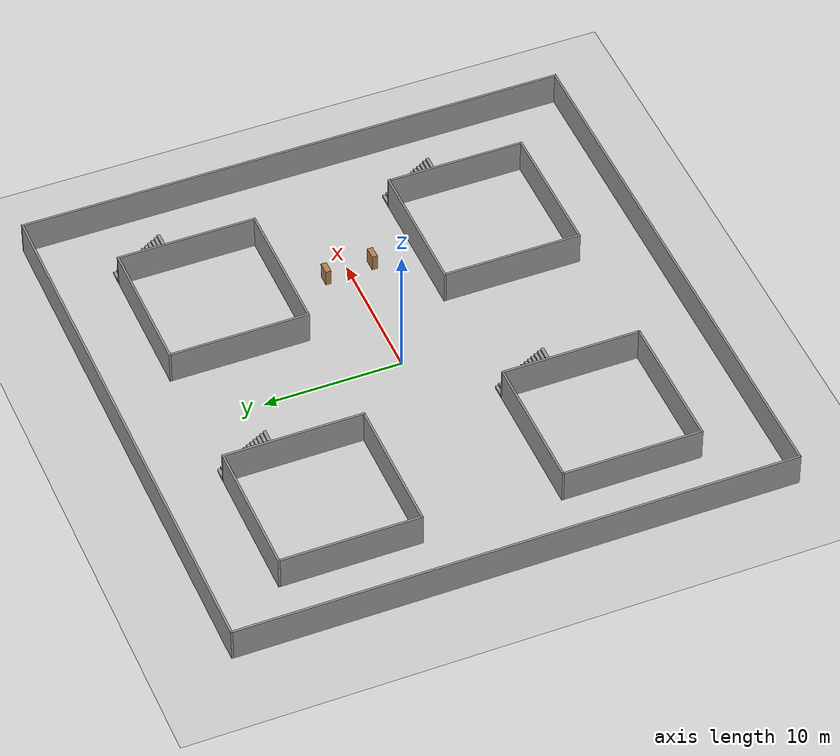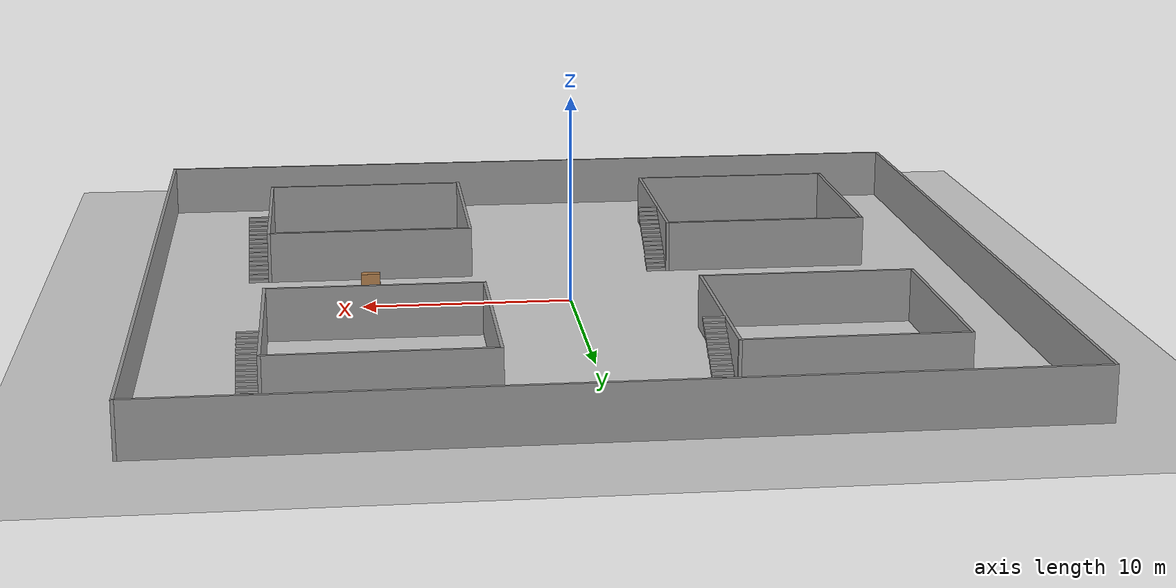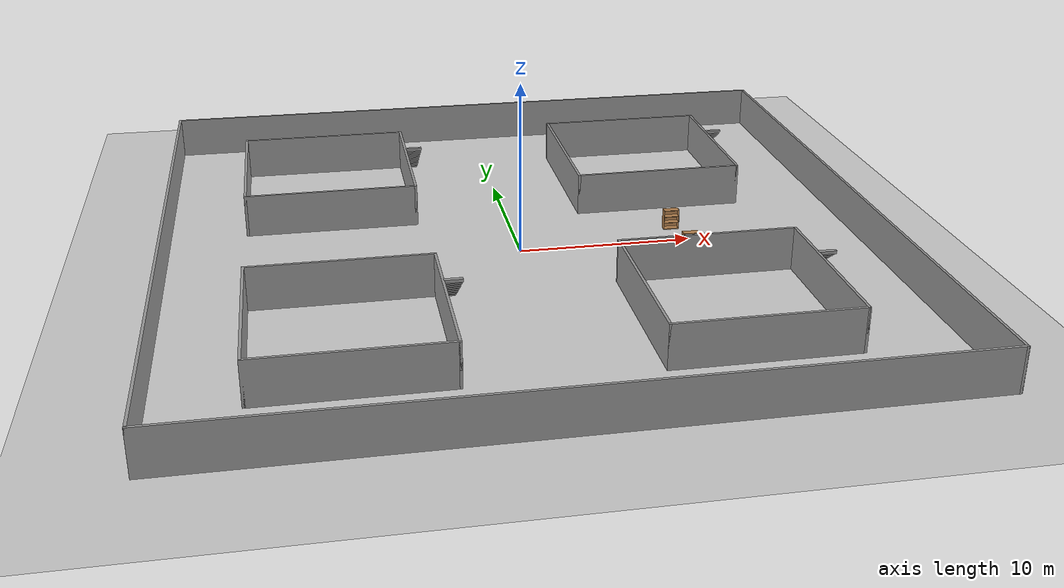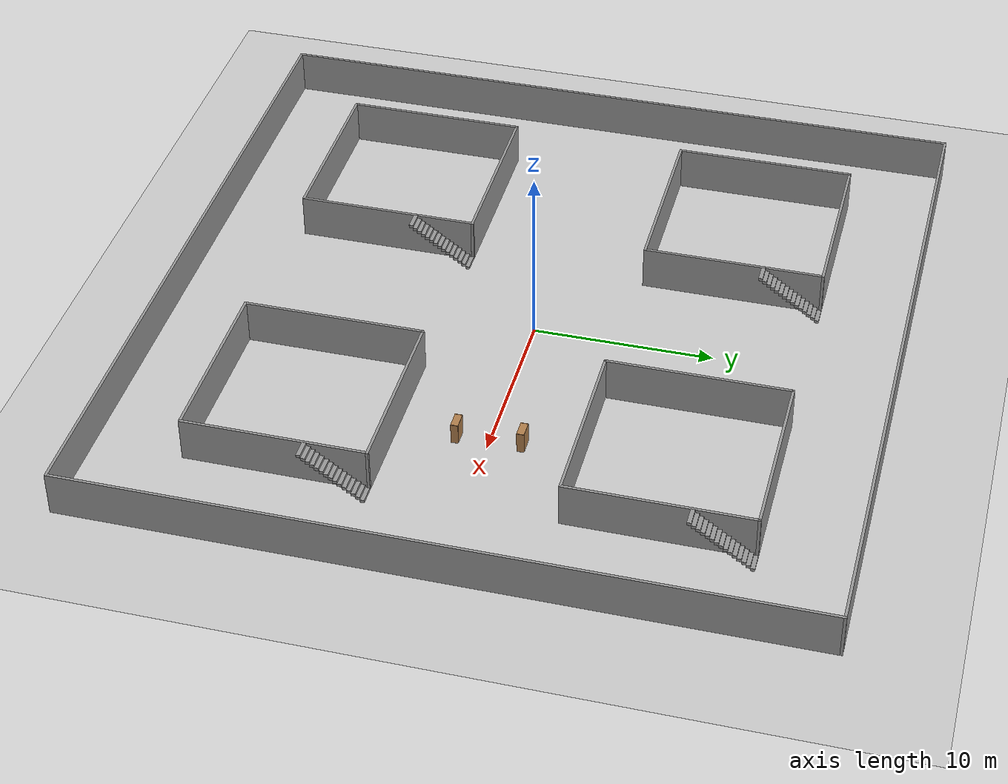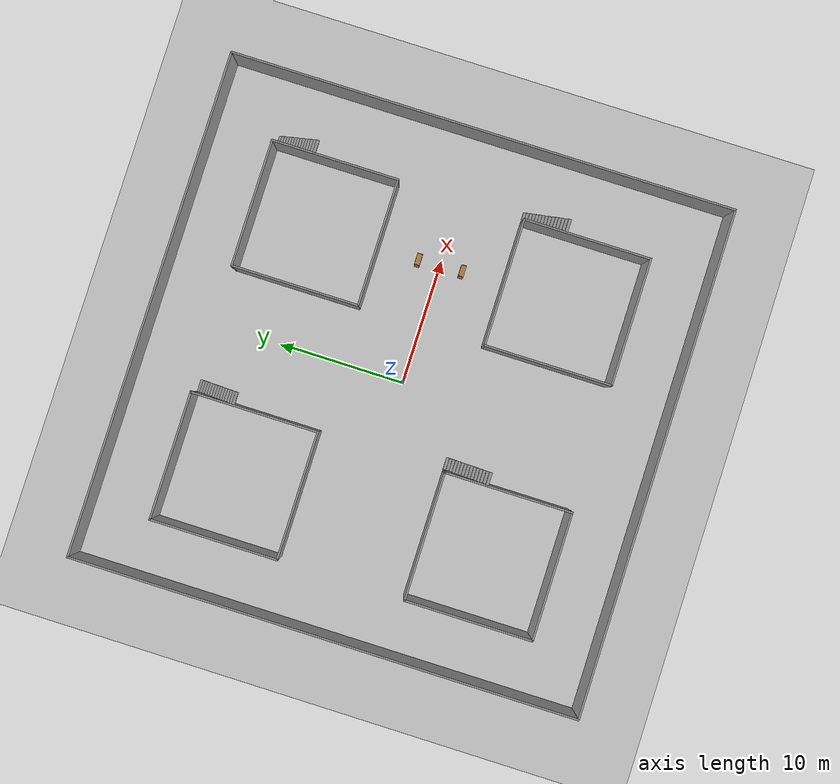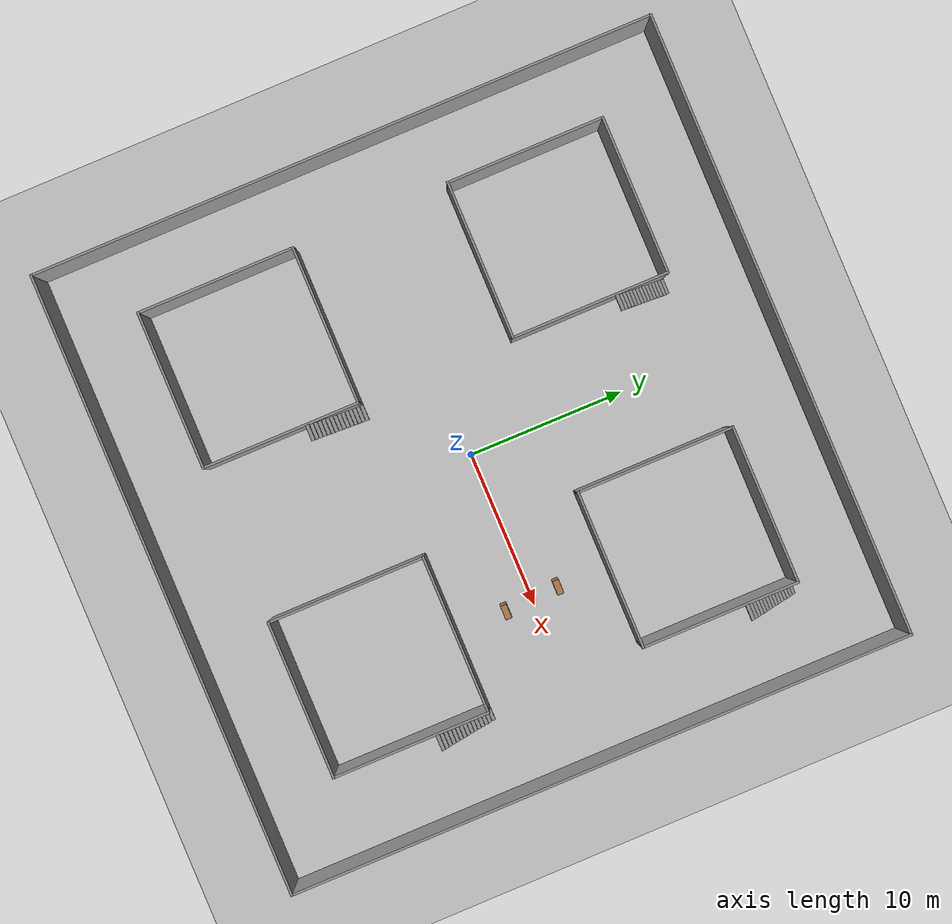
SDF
<sdf version="1.6">
 <world name="default">
  <light name="sun" type="directional">
   <pose>0 0 10 0 -0 0</pose>
   <diffuse>0.8 0.8 0.8 1</diffuse>
   <specular>0.1 0.1 0.1 1</specular>
   <attenuation>
    <range>1000</range>
    <constant>0.9</constant>
    <linear>0.01</linear>
    <quadratic>0.001</quadratic>
   </attenuation>
   <direction>-0.5 0.5 -1</direction>
  </light>
  <model name="ground_plane">
   <static>1</static>
   <link name="link">
    <collision name="collision">
     <geometry><plane><normal>0 0 1</normal><size>100 100</size></plane></geometry>
     <surface><friction><ode><mu>100</mu><mu2>50</mu2></ode></friction></surface>
    </collision>
    <visual name="visual">
     <cast_shadows>0</cast_shadows>
     <geometry><plane><normal>0 0 1</normal><size>100 100</size></plane></geometry>
     <material>
      <script><uri>file://media/materials/scripts/gazebo.material</uri><name>Gazebo/Grey</name></script>
     </material>
    </visual>
   </link>
  </model>
  <gravity>0 0 -9.8</gravity>
  <magnetic_field>6e-06 2.3e-05 -4.2e-05</magnetic_field>
  <atmosphere type="adiabatic"/>
  <physics name="default_physics" default="0" type="ode">
   <max_step_size>0.001</max_step_size>
   <real_time_factor>1</real_time_factor>
   <real_time_update_rate>1000</real_time_update_rate>
  </physics>
  <scene><ambient>0.4 0.4 0.4 1</ambient><background>0.7 0.7 0.7 1</background><shadows>1</shadows></scene>
  <spherical_coordinates>
   <surface_model>EARTH_WGS84</surface_model>
   <latitude_deg>0</latitude_deg>
   <longitude_deg>0</longitude_deg>
   <elevation>0</elevation>
   <heading_deg>0</heading_deg>
  </spherical_coordinates>
  <model name="10X10">
   <pose>-10 -10 0 0 -0 0</pose>
   <link name="Stairs_0">
    <visual name="Stairs_0_Visual_0">
     <pose>5.05837 4.95794 0.083333 0 -0 0</pose>
     <geometry><box><size>1 0.233333 0.166667</size></box></geometry>
     <material>
      <script><uri>file://media/materials/scripts/gazebo.material</uri><name>Gazebo/Grey</name></script>
      <ambient>1 1 1 1</ambient>
     </material>
    </visual>
    <collision name="Stairs_0_Collision_0">
     <geometry><box><size>1 0.233333 0.166667</size></box></geometry>
     <pose>5.05837 4.95794 0.083333 0 -0 0</pose>
    </collision>
    <visual name="Stairs_0_Visual_1">
     <pose>5.05837 4.72461 0.25 0 -0 0</pose>
     <geometry><box><size>1 0.233333 0.166667</size></box></geometry>
     <material>
      <script><uri>file://media/materials/scripts/gazebo.material</uri><name>Gazebo/Grey</name></script>
      <ambient>1 1 1 1</ambient>
     </material>
    </visual>
    <collision name="Stairs_0_Collision_1">
     <geometry><box><size>1 0.233333 0.166667</size></box></geometry>
     <pose>5.05837 4.72461 0.25 0 -0 0</pose>
    </collision>
    <visual name="Stairs_0_Visual_2">
     <pose>5.05837 4.49128 0.416667 0 -0 0</pose>
     <geometry><box><size>1 0.233333 0.166667</size></box></geometry>
     <material>
      <script><uri>file://media/materials/scripts/gazebo.material</uri><name>Gazebo/Grey</name></script>
      <ambient>1 1 1 1</ambient>
     </material>
    </visual>
    <collision name="Stairs_0_Collision_2">
     <geometry><box><size>1 0.233333 0.166667</size></box></geometry>
     <pose>5.05837 4.49128 0.416667 0 -0 0</pose>
    </collision>
    <visual name="Stairs_0_Visual_3">
     <pose>5.05837 4.25794 0.583333 0 -0 0</pose>
     <geometry><box><size>1 0.233333 0.166667</size></box></geometry>
     <material>
      <script><uri>file://media/materials/scripts/gazebo.material</uri><name>Gazebo/Grey</name></script>
      <ambient>1 1 1 1</ambient>
     </material>
    </visual>
    <collision name="Stairs_0_Collision_3">
     <geometry><box><size>1 0.233333 0.166667</size></box></geometry>
     <pose>5.05837 4.25794 0.583333 0 -0 0</pose>
    </collision>
    <visual name="Stairs_0_Visual_4">
     <pose>5.05837 4.02461 0.75 0 -0 0</pose>
     <geometry><box><size>1 0.233333 0.166667</size></box></geometry>
     <material>
      <script><uri>file://media/materials/scripts/gazebo.material</uri><name>Gazebo/Grey</name></script>
      <ambient>1 1 1 1</ambient>
     </material>
    </visual>
    <collision name="Stairs_0_Collision_4">
     <geometry><box><size>1 0.233333 0.166667</size></box></geometry>
     <pose>5.05837 4.02461 0.75 0 -0 0</pose>
    </collision>
    <visual name="Stairs_0_Visual_5">
     <pose>5.05837 3.79128 0.916667 0 -0 0</pose>
     <geometry><box><size>1 0.233333 0.166667</size></box></geometry>
     <material>
      <script><uri>file://media/materials/scripts/gazebo.material</uri><name>Gazebo/Grey</name></script>
      <ambient>1 1 1 1</ambient>
     </material>
    </visual>
    <collision name="Stairs_0_Collision_5">
     <geometry><box><size>1 0.233333 0.166667</size></box></geometry>
     <pose>5.05837 3.79128 0.916667 0 -0 0</pose>
    </collision>
    <visual name="Stairs_0_Visual_6">
     <pose>5.05837 3.55794 1.08333 0 -0 0</pose>
     <geometry><box><size>1 0.233333 0.166667</size></box></geometry>
     <material>
      <script><uri>file://media/materials/scripts/gazebo.material</uri><name>Gazebo/Grey</name></script>
      <ambient>1 1 1 1</ambient>
     </material>
    </visual>
    <collision name="Stairs_0_Collision_6">
     <geometry><box><size>1 0.233333 0.166667</size></box></geometry>
     <pose>5.05837 3.55794 1.08333 0 -0 0</pose>
    </collision>
    <visual name="Stairs_0_Visual_7">
     <pose>5.05837 3.32461 1.25 0 -0 0</pose>
     <geometry><box><size>1 0.233333 0.166667</size></box></geometry>
     <material>
      <script><uri>file://media/materials/scripts/gazebo.material</uri><name>Gazebo/Grey</name></script>
      <ambient>1 1 1 1</ambient>
     </material>
    </visual>
    <collision name="Stairs_0_Collision_7">
     <geometry><box><size>1 0.233333 0.166667</size></box></geometry>
     <pose>5.05837 3.32461 1.25 0 -0 0</pose>
    </collision>
    <visual name="Stairs_0_Visual_8">
     <pose>5.05837 3.09128 1.41667 0 -0 0</pose>
     <geometry><box><size>1 0.233333 0.166667</size></box></geometry>
     <material>
      <script><uri>file://media/materials/scripts/gazebo.material</uri><name>Gazebo/Grey</name></script>
      <ambient>1 1 1 1</ambient>
     </material>
    </visual>
    <collision name="Stairs_0_Collision_8">
     <geometry><box><size>1 0.233333 0.166667</size></box></geometry>
     <pose>5.05837 3.09128 1.41667 0 -0 0</pose>
    </collision>
    <visual name="Stairs_0_Visual_9">
     <pose>5.05837 2.85794 1.58333 0 -0 0</pose>
     <geometry><box><size>1 0.233333 0.166667</size></box></geometry>
     <material>
      <script><uri>file://media/materials/scripts/gazebo.material</uri><name>Gazebo/Grey</name></script>
      <ambient>1 1 1 1</ambient>
     </material>
    </visual>
    <collision name="Stairs_0_Collision_9">
     <geometry><box><size>1 0.233333 0.166667</size></box></geometry>
     <pose>5.05837 2.85794 1.58333 0 -0 0</pose>
    </collision>
    <visual name="Stairs_0_Visual_10">
     <pose>5.05837 2.62461 1.75 0 -0 0</pose>
     <geometry><box><size>1 0.233333 0.166667</size></box></geometry>
     <material>
      <script><uri>file://media/materials/scripts/gazebo.material</uri><name>Gazebo/Grey</name></script>
      <ambient>1 1 1 1</ambient>
     </material>
    </visual>
    <collision name="Stairs_0_Collision_10">
     <geometry><box><size>1 0.233333 0.166667</size></box></geometry>
     <pose>5.05837 2.62461 1.75 0 -0 0</pose>
    </collision>
    <visual name="Stairs_0_Visual_11">
     <pose>5.05837 2.39128 1.91667 0 -0 0</pose>
     <geometry><box><size>1 0.233333 0.166667</size></box></geometry>
     <material>
      <script><uri>file://media/materials/scripts/gazebo.material</uri><name>Gazebo/Grey</name></script>
      <ambient>1 1 1 1</ambient>
     </material>
    </visual>
    <collision name="Stairs_0_Collision_11">
     <geometry><box><size>1 0.233333 0.166667</size></box></geometry>
     <pose>5.05837 2.39128 1.91667 0 -0 0</pose>
    </collision>
    <visual name="Stairs_0_Visual_12">
     <pose>5.05837 2.15794 2.08333 0 -0 0</pose>
     <geometry><box><size>1 0.233333 0.166667</size></box></geometry>
     <material>
      <script><uri>file://media/materials/scripts/gazebo.material</uri><name>Gazebo/Grey</name></script>
      <ambient>1 1 1 1</ambient>
     </material>
    </visual>
    <collision name="Stairs_0_Collision_12">
     <geometry><box><size>1 0.233333 0.166667</size></box></geometry>
     <pose>5.05837 2.15794 2.08333 0 -0 0</pose>
    </collision>
    <visual name="Stairs_0_Visual_13">
     <pose>5.05837 1.92461 2.25 0 -0 0</pose>
     <geometry><box><size>1 0.233333 0.166667</size></box></geometry>
     <material>
      <script><uri>file://media/materials/scripts/gazebo.material</uri><name>Gazebo/Grey</name></script>
      <ambient>1 1 1 1</ambient>
     </material>
    </visual>
    <collision name="Stairs_0_Collision_13">
     <geometry><box><size>1 0.233333 0.166667</size></box></geometry>
     <pose>5.05837 1.92461 2.25 0 -0 0</pose>
    </collision>
    <visual name="Stairs_0_Visual_14">
     <pose>5.05837 1.69128 2.41667 0 -0 0</pose>
     <geometry><box><size>1 0.233333 0.166667</size></box></geometry>
     <material>
      <script><uri>file://media/materials/scripts/gazebo.material</uri><name>Gazebo/Grey</name></script>
      <ambient>1 1 1 1</ambient>
     </material>
    </visual>
    <collision name="Stairs_0_Collision_14">
     <geometry><box><size>1 0.233333 0.166667</size></box></geometry>
     <pose>5.05837 1.69128 2.41667 0 -0 0</pose>
    </collision>
   </link>
   <link name="Wall_1">
    <collision name="Wall_1_Collision">
     <geometry><box><size>10.15 0.15 2.5</size></box></geometry>
     <pose>0 0 1.25 0 -0 0</pose>
    </collision>
    <visual name="Wall_1_Visual">
     <pose>0 0 1.25 0 -0 0</pose>
     <geometry><box><size>10.15 0.15 2.5</size></box></geometry>
     <material>
      <script><uri>file://media/materials/scripts/gazebo.material</uri><name>Gazebo/Grey</name></script>
      <ambient>1 1 1 1</ambient>
     </material>
    </visual>
    <pose>-0.483372 -5 0 0 -0 0</pose>
   </link>
   <link name="Wall_4">
    <collision name="Wall_4_Collision">
     <geometry><box><size>10.15 0.15 2.5</size></box></geometry>
     <pose>0 0 1.25 0 -0 0</pose>
    </collision>
    <visual name="Wall_4_Visual">
     <pose>0 0 1.25 0 -0 0</pose>
     <geometry><box><size>10.15 0.15 2.5</size></box></geometry>
     <material>
      <script><uri>file://media/materials/scripts/gazebo.material</uri><name>Gazebo/Grey</name></script>
      <ambient>1 1 1 1</ambient>
     </material>
    </visual>
    <pose>4.51663 0 0 0 -0 1.5708</pose>
   </link>
   <link name="Wall_6">
    <collision name="Wall_6_Collision">
     <geometry><box><size>10.15 0.15 2.5</size></box></geometry>
     <pose>0 0 1.25 0 -0 0</pose>
    </collision>
    <visual name="Wall_6_Visual">
     <pose>0 0 1.25 0 -0 0</pose>
     <geometry><box><size>10.15 0.15 2.5</size></box></geometry>
     <material>
      <script><uri>file://media/materials/scripts/gazebo.material</uri><name>Gazebo/Grey</name></script>
      <ambient>1 1 1 1</ambient>
     </material>
    </visual>
    <pose>-0.483372 5 0 0 -0 3.14159</pose>
   </link>
   <link name="Wall_7">
    <collision name="Wall_7_Collision">
     <geometry><box><size>10.15 0.15 2.5</size></box></geometry>
     <pose>0 0 1.25 0 -0 0</pose>
    </collision>
    <visual name="Wall_7_Visual">
     <pose>0 0 1.25 0 -0 0</pose>
     <geometry><box><size>10.15 0.15 2.5</size></box></geometry>
     <material>
      <script><uri>file://media/materials/scripts/gazebo.material</uri><name>Gazebo/Grey</name></script>
      <ambient>1 1 1 1</ambient>
     </material>
    </visual>
    <pose>-5.48337 0 0 0 0 -1.5708</pose>
   </link>
   <static>1</static>
  </model>
  <model name="40X40_nofloor">
   <link name="Wall_31">
    <pose>0 -20 0 0 -0 0</pose>
    <visual name="Wall_31_Visual">
     <pose>0 0 1.25 0 -0 0</pose>
     <geometry><box><size>40.15 0.15 2.5</size></box></geometry>
     <material>
      <script><uri>file://media/materials/scripts/gazebo.material</uri><name>Gazebo/Grey</name></script>
      <ambient>1 1 1 1</ambient>
      <diffuse>0.7 0.7 0.7 1</diffuse>
      <specular>0.01 0.01 0.01 1</specular>
      <emissive>0 0 0 1</emissive>
     </material>
    </visual>
    <collision name="Wall_31_Collision">
     <pose>0 0 1.25 0 -0 0</pose>
     <geometry><box><size>40.15 0.15 2.5</size></box></geometry>
     <surface>
      <friction>
       <ode><mu>1</mu><mu2>1</mu2><fdir1>0 0 0</fdir1><slip1>0</slip1><slip2>0</slip2></ode>
       <torsional>
        <coefficient>1</coefficient>
        <patch_radius>0</patch_radius>
        <surface_radius>0</surface_radius>
        <use_patch_radius>1</use_patch_radius>
        <ode><slip>0</slip></ode>
       </torsional>
      </friction>
      <bounce><restitution_coefficient>0</restitution_coefficient><threshold>1e+06</threshold></bounce>
      <contact>
       <collide_without_contact>0</collide_without_contact>
       <collide_without_contact_bitmask>1</collide_without_contact_bitmask>
       <collide_bitmask>1</collide_bitmask>
       <ode>
        <soft_cfm>0</soft_cfm>
        <soft_erp>0.2</soft_erp>
        <kp>1e+13</kp>
        <kd>1</kd>
        <max_vel>0.01</max_vel>
        <min_depth>0</min_depth>
       </ode>
       <bullet>
        <split_impulse>1</split_impulse>
        <split_impulse_penetration_threshold>-0.01</split_impulse_penetration_threshold>
        <soft_cfm>0</soft_cfm>
        <soft_erp>0.2</soft_erp>
        <kp>1e+13</kp>
        <kd>1</kd>
       </bullet>
      </contact>
     </surface>
    </collision>
   </link>
   <link name="Wall_33">
    <pose>20 0 0 0 -0 1.5708</pose>
    <visual name="Wall_33_Visual">
     <pose>0 0 1.25 0 -0 0</pose>
     <geometry><box><size>40.15 0.15 2.5</size></box></geometry>
     <material>
      <script><uri>file://media/materials/scripts/gazebo.material</uri><name>Gazebo/Grey</name></script>
      <ambient>1 1 1 1</ambient>
      <diffuse>0.7 0.7 0.7 1</diffuse>
      <specular>0.01 0.01 0.01 1</specular>
      <emissive>0 0 0 1</emissive>
     </material>
    </visual>
    <collision name="Wall_33_Collision">
     <pose>0 0 1.25 0 -0 0</pose>
     <geometry><box><size>40.15 0.15 2.5</size></box></geometry>
     <surface>
      <friction>
       <ode><mu>1</mu><mu2>1</mu2><fdir1>0 0 0</fdir1><slip1>0</slip1><slip2>0</slip2></ode>
       <torsional>
        <coefficient>1</coefficient>
        <patch_radius>0</patch_radius>
        <surface_radius>0</surface_radius>
        <use_patch_radius>1</use_patch_radius>
        <ode><slip>0</slip></ode>
       </torsional>
      </friction>
      <bounce><restitution_coefficient>0</restitution_coefficient><threshold>1e+06</threshold></bounce>
      <contact>
       <collide_without_contact>0</collide_without_contact>
       <collide_without_contact_bitmask>1</collide_without_contact_bitmask>
       <collide_bitmask>1</collide_bitmask>
       <ode>
        <soft_cfm>0</soft_cfm>
        <soft_erp>0.2</soft_erp>
        <kp>1e+13</kp>
        <kd>1</kd>
        <max_vel>0.01</max_vel>
        <min_depth>0</min_depth>
       </ode>
       <bullet>
        <split_impulse>1</split_impulse>
        <split_impulse_penetration_threshold>-0.01</split_impulse_penetration_threshold>
        <soft_cfm>0</soft_cfm>
        <soft_erp>0.2</soft_erp>
        <kp>1e+13</kp>
        <kd>1</kd>
       </bullet>
      </contact>
     </surface>
    </collision>
   </link>
   <link name="Wall_37">
    <pose>0 20 0 0 -0 3.14159</pose>
    <visual name="Wall_37_Visual">
     <pose>0 0 1.25 0 -0 0</pose>
     <geometry><box><size>40.15 0.15 2.5</size></box></geometry>
     <material>
      <script><uri>file://media/materials/scripts/gazebo.material</uri><name>Gazebo/Grey</name></script>
      <ambient>1 1 1 1</ambient>
      <diffuse>0.7 0.7 0.7 1</diffuse>
      <specular>0.01 0.01 0.01 1</specular>
      <emissive>0 0 0 1</emissive>
     </material>
    </visual>
    <collision name="Wall_37_Collision">
     <pose>0 0 1.25 0 -0 0</pose>
     <geometry><box><size>40.15 0.15 2.5</size></box></geometry>
     <surface>
      <friction>
       <ode><mu>1</mu><mu2>1</mu2><fdir1>0 0 0</fdir1><slip1>0</slip1><slip2>0</slip2></ode>
       <torsional>
        <coefficient>1</coefficient>
        <patch_radius>0</patch_radius>
        <surface_radius>0</surface_radius>
        <use_patch_radius>1</use_patch_radius>
        <ode><slip>0</slip></ode>
       </torsional>
      </friction>
      <bounce><restitution_coefficient>0</restitution_coefficient><threshold>1e+06</threshold></bounce>
      <contact>
       <collide_without_contact>0</collide_without_contact>
       <collide_without_contact_bitmask>1</collide_without_contact_bitmask>
       <collide_bitmask>1</collide_bitmask>
       <ode>
        <soft_cfm>0</soft_cfm>
        <soft_erp>0.2</soft_erp>
        <kp>1e+13</kp>
        <kd>1</kd>
        <max_vel>0.01</max_vel>
        <min_depth>0</min_depth>
       </ode>
       <bullet>
        <split_impulse>1</split_impulse>
        <split_impulse_penetration_threshold>-0.01</split_impulse_penetration_threshold>
        <soft_cfm>0</soft_cfm>
        <soft_erp>0.2</soft_erp>
        <kp>1e+13</kp>
        <kd>1</kd>
       </bullet>
      </contact>
     </surface>
    </collision>
   </link>
   <link name="Wall_40">
    <pose>-20 0 0 0 0 -1.5708</pose>
    <visual name="Wall_40_Visual">
     <pose>0 0 1.25 0 -0 0</pose>
     <geometry><box><size>40.15 0.15 2.5</size></box></geometry>
     <material>
      <script><uri>file://media/materials/scripts/gazebo.material</uri><name>Gazebo/Grey</name></script>
      <ambient>1 1 1 1</ambient>
      <diffuse>0.7 0.7 0.7 1</diffuse>
      <specular>0.01 0.01 0.01 1</specular>
      <emissive>0 0 0 1</emissive>
     </material>
    </visual>
    <collision name="Wall_40_Collision">
     <pose>0 0 1.25 0 -0 0</pose>
     <geometry><box><size>40.15 0.15 2.5</size></box></geometry>
     <surface>
      <friction>
       <ode><mu>1</mu><mu2>1</mu2><fdir1>0 0 0</fdir1><slip1>0</slip1><slip2>0</slip2></ode>
       <torsional>
        <coefficient>1</coefficient>
        <patch_radius>0</patch_radius>
        <surface_radius>0</surface_radius>
        <use_patch_radius>1</use_patch_radius>
        <ode><slip>0</slip></ode>
       </torsional>
      </friction>
      <bounce><restitution_coefficient>0</restitution_coefficient><threshold>1e+06</threshold></bounce>
      <contact>
       <collide_without_contact>0</collide_without_contact>
       <collide_without_contact_bitmask>1</collide_without_contact_bitmask>
       <collide_bitmask>1</collide_bitmask>
       <ode>
        <soft_cfm>0</soft_cfm>
        <soft_erp>0.2</soft_erp>
        <kp>1e+13</kp>
        <kd>1</kd>
        <max_vel>0.01</max_vel>
        <min_depth>0</min_depth>
       </ode>
       <bullet>
        <split_impulse>1</split_impulse>
        <split_impulse_penetration_threshold>-0.01</split_impulse_penetration_threshold>
        <soft_cfm>0</soft_cfm>
        <soft_erp>0.2</soft_erp>
        <kp>1e+13</kp>
        <kd>1</kd>
       </bullet>
      </contact>
     </surface>
    </collision>
   </link>
   <static>1</static>
  </model>
  <model name="10X10_clone">
   <pose>-10 10 0 0 -0 0</pose>
   <link name="Stairs_0">
    <visual name="Stairs_0_Visual_0">
     <pose>5.05837 4.95794 0.083333 0 -0 0</pose>
     <geometry><box><size>1 0.233333 0.166667</size></box></geometry>
     <material>
      <script><uri>file://media/materials/scripts/gazebo.material</uri><name>Gazebo/Grey</name></script>
      <ambient>1 1 1 1</ambient>
     </material>
    </visual>
    <collision name="Stairs_0_Collision_0">
     <geometry><box><size>1 0.233333 0.166667</size></box></geometry>
     <pose>5.05837 4.95794 0.083333 0 -0 0</pose>
    </collision>
    <visual name="Stairs_0_Visual_1">
     <pose>5.05837 4.72461 0.25 0 -0 0</pose>
     <geometry><box><size>1 0.233333 0.166667</size></box></geometry>
     <material>
      <script><uri>file://media/materials/scripts/gazebo.material</uri><name>Gazebo/Grey</name></script>
      <ambient>1 1 1 1</ambient>
     </material>
    </visual>
    <collision name="Stairs_0_Collision_1">
     <geometry><box><size>1 0.233333 0.166667</size></box></geometry>
     <pose>5.05837 4.72461 0.25 0 -0 0</pose>
    </collision>
    <visual name="Stairs_0_Visual_2">
     <pose>5.05837 4.49128 0.416667 0 -0 0</pose>
     <geometry><box><size>1 0.233333 0.166667</size></box></geometry>
     <material>
      <script><uri>file://media/materials/scripts/gazebo.material</uri><name>Gazebo/Grey</name></script>
      <ambient>1 1 1 1</ambient>
     </material>
    </visual>
    <collision name="Stairs_0_Collision_2">
     <geometry><box><size>1 0.233333 0.166667</size></box></geometry>
     <pose>5.05837 4.49128 0.416667 0 -0 0</pose>
    </collision>
    <visual name="Stairs_0_Visual_3">
     <pose>5.05837 4.25794 0.583333 0 -0 0</pose>
     <geometry><box><size>1 0.233333 0.166667</size></box></geometry>
     <material>
      <script><uri>file://media/materials/scripts/gazebo.material</uri><name>Gazebo/Grey</name></script>
      <ambient>1 1 1 1</ambient>
     </material>
    </visual>
    <collision name="Stairs_0_Collision_3">
     <geometry><box><size>1 0.233333 0.166667</size></box></geometry>
     <pose>5.05837 4.25794 0.583333 0 -0 0</pose>
    </collision>
    <visual name="Stairs_0_Visual_4">
     <pose>5.05837 4.02461 0.75 0 -0 0</pose>
     <geometry><box><size>1 0.233333 0.166667</size></box></geometry>
     <material>
      <script><uri>file://media/materials/scripts/gazebo.material</uri><name>Gazebo/Grey</name></script>
      <ambient>1 1 1 1</ambient>
     </material>
    </visual>
    <collision name="Stairs_0_Collision_4">
     <geometry><box><size>1 0.233333 0.166667</size></box></geometry>
     <pose>5.05837 4.02461 0.75 0 -0 0</pose>
    </collision>
    <visual name="Stairs_0_Visual_5">
     <pose>5.05837 3.79128 0.916667 0 -0 0</pose>
     <geometry><box><size>1 0.233333 0.166667</size></box></geometry>
     <material>
      <script><uri>file://media/materials/scripts/gazebo.material</uri><name>Gazebo/Grey</name></script>
      <ambient>1 1 1 1</ambient>
     </material>
    </visual>
    <collision name="Stairs_0_Collision_5">
     <geometry><box><size>1 0.233333 0.166667</size></box></geometry>
     <pose>5.05837 3.79128 0.916667 0 -0 0</pose>
    </collision>
    <visual name="Stairs_0_Visual_6">
     <pose>5.05837 3.55794 1.08333 0 -0 0</pose>
     <geometry><box><size>1 0.233333 0.166667</size></box></geometry>
     <material>
      <script><uri>file://media/materials/scripts/gazebo.material</uri><name>Gazebo/Grey</name></script>
      <ambient>1 1 1 1</ambient>
     </material>
    </visual>
    <collision name="Stairs_0_Collision_6">
     <geometry><box><size>1 0.233333 0.166667</size></box></geometry>
     <pose>5.05837 3.55794 1.08333 0 -0 0</pose>
    </collision>
    <visual name="Stairs_0_Visual_7">
     <pose>5.05837 3.32461 1.25 0 -0 0</pose>
     <geometry><box><size>1 0.233333 0.166667</size></box></geometry>
     <material>
      <script><uri>file://media/materials/scripts/gazebo.material</uri><name>Gazebo/Grey</name></script>
      <ambient>1 1 1 1</ambient>
     </material>
    </visual>
    <collision name="Stairs_0_Collision_7">
     <geometry><box><size>1 0.233333 0.166667</size></box></geometry>
     <pose>5.05837 3.32461 1.25 0 -0 0</pose>
    </collision>
    <visual name="Stairs_0_Visual_8">
     <pose>5.05837 3.09128 1.41667 0 -0 0</pose>
     <geometry><box><size>1 0.233333 0.166667</size></box></geometry>
     <material>
      <script><uri>file://media/materials/scripts/gazebo.material</uri><name>Gazebo/Grey</name></script>
      <ambient>1 1 1 1</ambient>
     </material>
    </visual>
    <collision name="Stairs_0_Collision_8">
     <geometry><box><size>1 0.233333 0.166667</size></box></geometry>
     <pose>5.05837 3.09128 1.41667 0 -0 0</pose>
    </collision>
    <visual name="Stairs_0_Visual_9">
     <pose>5.05837 2.85794 1.58333 0 -0 0</pose>
     <geometry><box><size>1 0.233333 0.166667</size></box></geometry>
     <material>
      <script><uri>file://media/materials/scripts/gazebo.material</uri><name>Gazebo/Grey</name></script>
      <ambient>1 1 1 1</ambient>
     </material>
    </visual>
    <collision name="Stairs_0_Collision_9">
     <geometry><box><size>1 0.233333 0.166667</size></box></geometry>
     <pose>5.05837 2.85794 1.58333 0 -0 0</pose>
    </collision>
    <visual name="Stairs_0_Visual_10">
     <pose>5.05837 2.62461 1.75 0 -0 0</pose>
     <geometry><box><size>1 0.233333 0.166667</size></box></geometry>
     <material>
      <script><uri>file://media/materials/scripts/gazebo.material</uri><name>Gazebo/Grey</name></script>
      <ambient>1 1 1 1</ambient>
     </material>
    </visual>
    <collision name="Stairs_0_Collision_10">
     <geometry><box><size>1 0.233333 0.166667</size></box></geometry>
     <pose>5.05837 2.62461 1.75 0 -0 0</pose>
    </collision>
    <visual name="Stairs_0_Visual_11">
     <pose>5.05837 2.39128 1.91667 0 -0 0</pose>
     <geometry><box><size>1 0.233333 0.166667</size></box></geometry>
     <material>
      <script><uri>file://media/materials/scripts/gazebo.material</uri><name>Gazebo/Grey</name></script>
      <ambient>1 1 1 1</ambient>
     </material>
    </visual>
    <collision name="Stairs_0_Collision_11">
     <geometry><box><size>1 0.233333 0.166667</size></box></geometry>
     <pose>5.05837 2.39128 1.91667 0 -0 0</pose>
    </collision>
    <visual name="Stairs_0_Visual_12">
     <pose>5.05837 2.15794 2.08333 0 -0 0</pose>
     <geometry><box><size>1 0.233333 0.166667</size></box></geometry>
     <material>
      <script><uri>file://media/materials/scripts/gazebo.material</uri><name>Gazebo/Grey</name></script>
      <ambient>1 1 1 1</ambient>
     </material>
    </visual>
    <collision name="Stairs_0_Collision_12">
     <geometry><box><size>1 0.233333 0.166667</size></box></geometry>
     <pose>5.05837 2.15794 2.08333 0 -0 0</pose>
    </collision>
    <visual name="Stairs_0_Visual_13">
     <pose>5.05837 1.92461 2.25 0 -0 0</pose>
     <geometry><box><size>1 0.233333 0.166667</size></box></geometry>
     <material>
      <script><uri>file://media/materials/scripts/gazebo.material</uri><name>Gazebo/Grey</name></script>
      <ambient>1 1 1 1</ambient>
     </material>
    </visual>
    <collision name="Stairs_0_Collision_13">
     <geometry><box><size>1 0.233333 0.166667</size></box></geometry>
     <pose>5.05837 1.92461 2.25 0 -0 0</pose>
    </collision>
    <visual name="Stairs_0_Visual_14">
     <pose>5.05837 1.69128 2.41667 0 -0 0</pose>
     <geometry><box><size>1 0.233333 0.166667</size></box></geometry>
     <material>
      <script><uri>file://media/materials/scripts/gazebo.material</uri><name>Gazebo/Grey</name></script>
      <ambient>1 1 1 1</ambient>
     </material>
    </visual>
    <collision name="Stairs_0_Collision_14">
     <geometry><box><size>1 0.233333 0.166667</size></box></geometry>
     <pose>5.05837 1.69128 2.41667 0 -0 0</pose>
    </collision>
   </link>
   <link name="Wall_1">
    <collision name="Wall_1_Collision">
     <geometry><box><size>10.15 0.15 2.5</size></box></geometry>
     <pose>0 0 1.25 0 -0 0</pose>
    </collision>
    <visual name="Wall_1_Visual">
     <pose>0 0 1.25 0 -0 0</pose>
     <geometry><box><size>10.15 0.15 2.5</size></box></geometry>
     <material>
      <script><uri>file://media/materials/scripts/gazebo.material</uri><name>Gazebo/Grey</name></script>
      <ambient>1 1 1 1</ambient>
     </material>
    </visual>
    <pose>-0.483372 -5 0 0 -0 0</pose>
   </link>
   <link name="Wall_4">
    <collision name="Wall_4_Collision">
     <geometry><box><size>10.15 0.15 2.5</size></box></geometry>
     <pose>0 0 1.25 0 -0 0</pose>
    </collision>
    <visual name="Wall_4_Visual">
     <pose>0 0 1.25 0 -0 0</pose>
     <geometry><box><size>10.15 0.15 2.5</size></box></geometry>
     <material>
      <script><uri>file://media/materials/scripts/gazebo.material</uri><name>Gazebo/Grey</name></script>
      <ambient>1 1 1 1</ambient>
     </material>
    </visual>
    <pose>4.51663 0 0 0 -0 1.5708</pose>
   </link>
   <link name="Wall_6">
    <collision name="Wall_6_Collision">
     <geometry><box><size>10.15 0.15 2.5</size></box></geometry>
     <pose>0 0 1.25 0 -0 0</pose>
    </collision>
    <visual name="Wall_6_Visual">
     <pose>0 0 1.25 0 -0 0</pose>
     <geometry><box><size>10.15 0.15 2.5</size></box></geometry>
     <material>
      <script><uri>file://media/materials/scripts/gazebo.material</uri><name>Gazebo/Grey</name></script>
      <ambient>1 1 1 1</ambient>
     </material>
    </visual>
    <pose>-0.483372 5 0 0 -0 3.14159</pose>
   </link>
   <link name="Wall_7">
    <collision name="Wall_7_Collision">
     <geometry><box><size>10.15 0.15 2.5</size></box></geometry>
     <pose>0 0 1.25 0 -0 0</pose>
    </collision>
    <visual name="Wall_7_Visual">
     <pose>0 0 1.25 0 -0 0</pose>
     <geometry><box><size>10.15 0.15 2.5</size></box></geometry>
     <material>
      <script><uri>file://media/materials/scripts/gazebo.material</uri><name>Gazebo/Grey</name></script>
      <ambient>1 1 1 1</ambient>
     </material>
    </visual>
    <pose>-5.48337 0 0 0 0 -1.5708</pose>
   </link>
   <static>1</static>
  </model>
  <model name="10X10_clone_0">
   <pose>10 10 0 0 -0 0</pose>
   <link name="Stairs_0">
    <visual name="Stairs_0_Visual_0">
     <pose>5.05837 4.95794 0.083333 0 -0 0</pose>
     <geometry><box><size>1 0.233333 0.166667</size></box></geometry>
     <material>
      <script><uri>file://media/materials/scripts/gazebo.material</uri><name>Gazebo/Grey</name></script>
      <ambient>1 1 1 1</ambient>
     </material>
    </visual>
    <collision name="Stairs_0_Collision_0">
     <geometry><box><size>1 0.233333 0.166667</size></box></geometry>
     <pose>5.05837 4.95794 0.083333 0 -0 0</pose>
    </collision>
    <visual name="Stairs_0_Visual_1">
     <pose>5.05837 4.72461 0.25 0 -0 0</pose>
     <geometry><box><size>1 0.233333 0.166667</size></box></geometry>
     <material>
      <script><uri>file://media/materials/scripts/gazebo.material</uri><name>Gazebo/Grey</name></script>
      <ambient>1 1 1 1</ambient>
     </material>
    </visual>
    <collision name="Stairs_0_Collision_1">
     <geometry><box><size>1 0.233333 0.166667</size></box></geometry>
     <pose>5.05837 4.72461 0.25 0 -0 0</pose>
    </collision>
    <visual name="Stairs_0_Visual_2">
     <pose>5.05837 4.49128 0.416667 0 -0 0</pose>
     <geometry><box><size>1 0.233333 0.166667</size></box></geometry>
     <material>
      <script><uri>file://media/materials/scripts/gazebo.material</uri><name>Gazebo/Grey</name></script>
      <ambient>1 1 1 1</ambient>
     </material>
    </visual>
    <collision name="Stairs_0_Collision_2">
     <geometry><box><size>1 0.233333 0.166667</size></box></geometry>
     <pose>5.05837 4.49128 0.416667 0 -0 0</pose>
    </collision>
    <visual name="Stairs_0_Visual_3">
     <pose>5.05837 4.25794 0.583333 0 -0 0</pose>
     <geometry><box><size>1 0.233333 0.166667</size></box></geometry>
     <material>
      <script><uri>file://media/materials/scripts/gazebo.material</uri><name>Gazebo/Grey</name></script>
      <ambient>1 1 1 1</ambient>
     </material>
    </visual>
    <collision name="Stairs_0_Collision_3">
     <geometry><box><size>1 0.233333 0.166667</size></box></geometry>
     <pose>5.05837 4.25794 0.583333 0 -0 0</pose>
    </collision>
    <visual name="Stairs_0_Visual_4">
     <pose>5.05837 4.02461 0.75 0 -0 0</pose>
     <geometry><box><size>1 0.233333 0.166667</size></box></geometry>
     <material>
      <script><uri>file://media/materials/scripts/gazebo.material</uri><name>Gazebo/Grey</name></script>
      <ambient>1 1 1 1</ambient>
     </material>
    </visual>
    <collision name="Stairs_0_Collision_4">
     <geometry><box><size>1 0.233333 0.166667</size></box></geometry>
     <pose>5.05837 4.02461 0.75 0 -0 0</pose>
    </collision>
    <visual name="Stairs_0_Visual_5">
     <pose>5.05837 3.79128 0.916667 0 -0 0</pose>
     <geometry><box><size>1 0.233333 0.166667</size></box></geometry>
     <material>
      <script><uri>file://media/materials/scripts/gazebo.material</uri><name>Gazebo/Grey</name></script>
      <ambient>1 1 1 1</ambient>
     </material>
    </visual>
    <collision name="Stairs_0_Collision_5">
     <geometry><box><size>1 0.233333 0.166667</size></box></geometry>
     <pose>5.05837 3.79128 0.916667 0 -0 0</pose>
    </collision>
    <visual name="Stairs_0_Visual_6">
     <pose>5.05837 3.55794 1.08333 0 -0 0</pose>
     <geometry><box><size>1 0.233333 0.166667</size></box></geometry>
     <material>
      <script><uri>file://media/materials/scripts/gazebo.material</uri><name>Gazebo/Grey</name></script>
      <ambient>1 1 1 1</ambient>
     </material>
    </visual>
    <collision name="Stairs_0_Collision_6">
     <geometry><box><size>1 0.233333 0.166667</size></box></geometry>
     <pose>5.05837 3.55794 1.08333 0 -0 0</pose>
    </collision>
    <visual name="Stairs_0_Visual_7">
     <pose>5.05837 3.32461 1.25 0 -0 0</pose>
     <geometry><box><size>1 0.233333 0.166667</size></box></geometry>
     <material>
      <script><uri>file://media/materials/scripts/gazebo.material</uri><name>Gazebo/Grey</name></script>
      <ambient>1 1 1 1</ambient>
     </material>
    </visual>
    <collision name="Stairs_0_Collision_7">
     <geometry><box><size>1 0.233333 0.166667</size></box></geometry>
     <pose>5.05837 3.32461 1.25 0 -0 0</pose>
    </collision>
    <visual name="Stairs_0_Visual_8">
     <pose>5.05837 3.09128 1.41667 0 -0 0</pose>
     <geometry><box><size>1 0.233333 0.166667</size></box></geometry>
     <material>
      <script><uri>file://media/materials/scripts/gazebo.material</uri><name>Gazebo/Grey</name></script>
      <ambient>1 1 1 1</ambient>
     </material>
    </visual>
    <collision name="Stairs_0_Collision_8">
     <geometry><box><size>1 0.233333 0.166667</size></box></geometry>
     <pose>5.05837 3.09128 1.41667 0 -0 0</pose>
    </collision>
    <visual name="Stairs_0_Visual_9">
     <pose>5.05837 2.85794 1.58333 0 -0 0</pose>
     <geometry><box><size>1 0.233333 0.166667</size></box></geometry>
     <material>
      <script><uri>file://media/materials/scripts/gazebo.material</uri><name>Gazebo/Grey</name></script>
      <ambient>1 1 1 1</ambient>
     </material>
    </visual>
    <collision name="Stairs_0_Collision_9">
     <geometry><box><size>1 0.233333 0.166667</size></box></geometry>
     <pose>5.05837 2.85794 1.58333 0 -0 0</pose>
    </collision>
    <visual name="Stairs_0_Visual_10">
     <pose>5.05837 2.62461 1.75 0 -0 0</pose>
     <geometry><box><size>1 0.233333 0.166667</size></box></geometry>
     <material>
      <script><uri>file://media/materials/scripts/gazebo.material</uri><name>Gazebo/Grey</name></script>
      <ambient>1 1 1 1</ambient>
     </material>
    </visual>
    <collision name="Stairs_0_Collision_10">
     <geometry><box><size>1 0.233333 0.166667</size></box></geometry>
     <pose>5.05837 2.62461 1.75 0 -0 0</pose>
    </collision>
    <visual name="Stairs_0_Visual_11">
     <pose>5.05837 2.39128 1.91667 0 -0 0</pose>
     <geometry><box><size>1 0.233333 0.166667</size></box></geometry>
     <material>
      <script><uri>file://media/materials/scripts/gazebo.material</uri><name>Gazebo/Grey</name></script>
      <ambient>1 1 1 1</ambient>
     </material>
    </visual>
    <collision name="Stairs_0_Collision_11">
     <geometry><box><size>1 0.233333 0.166667</size></box></geometry>
     <pose>5.05837 2.39128 1.91667 0 -0 0</pose>
    </collision>
    <visual name="Stairs_0_Visual_12">
     <pose>5.05837 2.15794 2.08333 0 -0 0</pose>
     <geometry><box><size>1 0.233333 0.166667</size></box></geometry>
     <material>
      <script><uri>file://media/materials/scripts/gazebo.material</uri><name>Gazebo/Grey</name></script>
      <ambient>1 1 1 1</ambient>
     </material>
    </visual>
    <collision name="Stairs_0_Collision_12">
     <geometry><box><size>1 0.233333 0.166667</size></box></geometry>
     <pose>5.05837 2.15794 2.08333 0 -0 0</pose>
    </collision>
    <visual name="Stairs_0_Visual_13">
     <pose>5.05837 1.92461 2.25 0 -0 0</pose>
     <geometry><box><size>1 0.233333 0.166667</size></box></geometry>
     <material>
      <script><uri>file://media/materials/scripts/gazebo.material</uri><name>Gazebo/Grey</name></script>
      <ambient>1 1 1 1</ambient>
     </material>
    </visual>
    <collision name="Stairs_0_Collision_13">
     <geometry><box><size>1 0.233333 0.166667</size></box></geometry>
     <pose>5.05837 1.92461 2.25 0 -0 0</pose>
    </collision>
    <visual name="Stairs_0_Visual_14">
     <pose>5.05837 1.69128 2.41667 0 -0 0</pose>
     <geometry><box><size>1 0.233333 0.166667</size></box></geometry>
     <material>
      <script><uri>file://media/materials/scripts/gazebo.material</uri><name>Gazebo/Grey</name></script>
      <ambient>1 1 1 1</ambient>
     </material>
    </visual>
    <collision name="Stairs_0_Collision_14">
     <geometry><box><size>1 0.233333 0.166667</size></box></geometry>
     <pose>5.05837 1.69128 2.41667 0 -0 0</pose>
    </collision>
   </link>
   <link name="Wall_1">
    <collision name="Wall_1_Collision">
     <geometry><box><size>10.15 0.15 2.5</size></box></geometry>
     <pose>0 0 1.25 0 -0 0</pose>
    </collision>
    <visual name="Wall_1_Visual">
     <pose>0 0 1.25 0 -0 0</pose>
     <geometry><box><size>10.15 0.15 2.5</size></box></geometry>
     <material>
      <script><uri>file://media/materials/scripts/gazebo.material</uri><name>Gazebo/Grey</name></script>
      <ambient>1 1 1 1</ambient>
     </material>
    </visual>
    <pose>-0.483372 -5 0 0 -0 0</pose>
   </link>
   <link name="Wall_4">
    <collision name="Wall_4_Collision">
     <geometry><box><size>10.15 0.15 2.5</size></box></geometry>
     <pose>0 0 1.25 0 -0 0</pose>
    </collision>
    <visual name="Wall_4_Visual">
     <pose>0 0 1.25 0 -0 0</pose>
     <geometry><box><size>10.15 0.15 2.5</size></box></geometry>
     <material>
      <script><uri>file://media/materials/scripts/gazebo.material</uri><name>Gazebo/Grey</name></script>
      <ambient>1 1 1 1</ambient>
     </material>
    </visual>
    <pose>4.51663 0 0 0 -0 1.5708</pose>
   </link>
   <link name="Wall_6">
    <collision name="Wall_6_Collision">
     <geometry><box><size>10.15 0.15 2.5</size></box></geometry>
     <pose>0 0 1.25 0 -0 0</pose>
    </collision>
    <visual name="Wall_6_Visual">
     <pose>0 0 1.25 0 -0 0</pose>
     <geometry><box><size>10.15 0.15 2.5</size></box></geometry>
     <material>
      <script><uri>file://media/materials/scripts/gazebo.material</uri><name>Gazebo/Grey</name></script>
      <ambient>1 1 1 1</ambient>
     </material>
    </visual>
    <pose>-0.483372 5 0 0 -0 3.14159</pose>
   </link>
   <link name="Wall_7">
    <collision name="Wall_7_Collision">
     <geometry><box><size>10.15 0.15 2.5</size></box></geometry>
     <pose>0 0 1.25 0 -0 0</pose>
    </collision>
    <visual name="Wall_7_Visual">
     <pose>0 0 1.25 0 -0 0</pose>
     <geometry><box><size>10.15 0.15 2.5</size></box></geometry>
     <material>
      <script><uri>file://media/materials/scripts/gazebo.material</uri><name>Gazebo/Grey</name></script>
      <ambient>1 1 1 1</ambient>
     </material>
    </visual>
    <pose>-5.48337 0 0 0 0 -1.5708</pose>
   </link>
   <static>1</static>
  </model>
  <model name="10X10_clone_1">
   <pose>10 -10 0 0 -0 0</pose>
   <link name="Stairs_0">
    <visual name="Stairs_0_Visual_0">
     <pose>5.05837 4.95794 0.083333 0 -0 0</pose>
     <geometry><box><size>1 0.233333 0.166667</size></box></geometry>
     <material>
      <script><uri>file://media/materials/scripts/gazebo.material</uri><name>Gazebo/Grey</name></script>
      <ambient>1 1 1 1</ambient>
     </material>
    </visual>
    <collision name="Stairs_0_Collision_0">
     <geometry><box><size>1 0.233333 0.166667</size></box></geometry>
     <pose>5.05837 4.95794 0.083333 0 -0 0</pose>
    </collision>
    <visual name="Stairs_0_Visual_1">
     <pose>5.05837 4.72461 0.25 0 -0 0</pose>
     <geometry><box><size>1 0.233333 0.166667</size></box></geometry>
     <material>
      <script><uri>file://media/materials/scripts/gazebo.material</uri><name>Gazebo/Grey</name></script>
      <ambient>1 1 1 1</ambient>
     </material>
    </visual>
    <collision name="Stairs_0_Collision_1">
     <geometry><box><size>1 0.233333 0.166667</size></box></geometry>
     <pose>5.05837 4.72461 0.25 0 -0 0</pose>
    </collision>
    <visual name="Stairs_0_Visual_2">
     <pose>5.05837 4.49128 0.416667 0 -0 0</pose>
     <geometry><box><size>1 0.233333 0.166667</size></box></geometry>
     <material>
      <script><uri>file://media/materials/scripts/gazebo.material</uri><name>Gazebo/Grey</name></script>
      <ambient>1 1 1 1</ambient>
     </material>
    </visual>
    <collision name="Stairs_0_Collision_2">
     <geometry><box><size>1 0.233333 0.166667</size></box></geometry>
     <pose>5.05837 4.49128 0.416667 0 -0 0</pose>
    </collision>
    <visual name="Stairs_0_Visual_3">
     <pose>5.05837 4.25794 0.583333 0 -0 0</pose>
     <geometry><box><size>1 0.233333 0.166667</size></box></geometry>
     <material>
      <script><uri>file://media/materials/scripts/gazebo.material</uri><name>Gazebo/Grey</name></script>
      <ambient>1 1 1 1</ambient>
     </material>
    </visual>
    <collision name="Stairs_0_Collision_3">
     <geometry><box><size>1 0.233333 0.166667</size></box></geometry>
     <pose>5.05837 4.25794 0.583333 0 -0 0</pose>
    </collision>
    <visual name="Stairs_0_Visual_4">
     <pose>5.05837 4.02461 0.75 0 -0 0</pose>
     <geometry><box><size>1 0.233333 0.166667</size></box></geometry>
     <material>
      <script><uri>file://media/materials/scripts/gazebo.material</uri><name>Gazebo/Grey</name></script>
      <ambient>1 1 1 1</ambient>
     </material>
    </visual>
    <collision name="Stairs_0_Collision_4">
     <geometry><box><size>1 0.233333 0.166667</size></box></geometry>
     <pose>5.05837 4.02461 0.75 0 -0 0</pose>
    </collision>
    <visual name="Stairs_0_Visual_5">
     <pose>5.05837 3.79128 0.916667 0 -0 0</pose>
     <geometry><box><size>1 0.233333 0.166667</size></box></geometry>
     <material>
      <script><uri>file://media/materials/scripts/gazebo.material</uri><name>Gazebo/Grey</name></script>
      <ambient>1 1 1 1</ambient>
     </material>
    </visual>
    <collision name="Stairs_0_Collision_5">
     <geometry><box><size>1 0.233333 0.166667</size></box></geometry>
     <pose>5.05837 3.79128 0.916667 0 -0 0</pose>
    </collision>
    <visual name="Stairs_0_Visual_6">
     <pose>5.05837 3.55794 1.08333 0 -0 0</pose>
     <geometry><box><size>1 0.233333 0.166667</size></box></geometry>
     <material>
      <script><uri>file://media/materials/scripts/gazebo.material</uri><name>Gazebo/Grey</name></script>
      <ambient>1 1 1 1</ambient>
     </material>
    </visual>
    <collision name="Stairs_0_Collision_6">
     <geometry><box><size>1 0.233333 0.166667</size></box></geometry>
     <pose>5.05837 3.55794 1.08333 0 -0 0</pose>
    </collision>
    <visual name="Stairs_0_Visual_7">
     <pose>5.05837 3.32461 1.25 0 -0 0</pose>
     <geometry><box><size>1 0.233333 0.166667</size></box></geometry>
     <material>
      <script><uri>file://media/materials/scripts/gazebo.material</uri><name>Gazebo/Grey</name></script>
      <ambient>1 1 1 1</ambient>
     </material>
    </visual>
    <collision name="Stairs_0_Collision_7">
     <geometry><box><size>1 0.233333 0.166667</size></box></geometry>
     <pose>5.05837 3.32461 1.25 0 -0 0</pose>
    </collision>
    <visual name="Stairs_0_Visual_8">
     <pose>5.05837 3.09128 1.41667 0 -0 0</pose>
     <geometry><box><size>1 0.233333 0.166667</size></box></geometry>
     <material>
      <script><uri>file://media/materials/scripts/gazebo.material</uri><name>Gazebo/Grey</name></script>
      <ambient>1 1 1 1</ambient>
     </material>
    </visual>
    <collision name="Stairs_0_Collision_8">
     <geometry><box><size>1 0.233333 0.166667</size></box></geometry>
     <pose>5.05837 3.09128 1.41667 0 -0 0</pose>
    </collision>
    <visual name="Stairs_0_Visual_9">
     <pose>5.05837 2.85794 1.58333 0 -0 0</pose>
     <geometry><box><size>1 0.233333 0.166667</size></box></geometry>
     <material>
      <script><uri>file://media/materials/scripts/gazebo.material</uri><name>Gazebo/Grey</name></script>
      <ambient>1 1 1 1</ambient>
     </material>
    </visual>
    <collision name="Stairs_0_Collision_9">
     <geometry><box><size>1 0.233333 0.166667</size></box></geometry>
     <pose>5.05837 2.85794 1.58333 0 -0 0</pose>
    </collision>
    <visual name="Stairs_0_Visual_10">
     <pose>5.05837 2.62461 1.75 0 -0 0</pose>
     <geometry><box><size>1 0.233333 0.166667</size></box></geometry>
     <material>
      <script><uri>file://media/materials/scripts/gazebo.material</uri><name>Gazebo/Grey</name></script>
      <ambient>1 1 1 1</ambient>
     </material>
    </visual>
    <collision name="Stairs_0_Collision_10">
     <geometry><box><size>1 0.233333 0.166667</size></box></geometry>
     <pose>5.05837 2.62461 1.75 0 -0 0</pose>
    </collision>
    <visual name="Stairs_0_Visual_11">
     <pose>5.05837 2.39128 1.91667 0 -0 0</pose>
     <geometry><box><size>1 0.233333 0.166667</size></box></geometry>
     <material>
      <script><uri>file://media/materials/scripts/gazebo.material</uri><name>Gazebo/Grey</name></script>
      <ambient>1 1 1 1</ambient>
     </material>
    </visual>
    <collision name="Stairs_0_Collision_11">
     <geometry><box><size>1 0.233333 0.166667</size></box></geometry>
     <pose>5.05837 2.39128 1.91667 0 -0 0</pose>
    </collision>
    <visual name="Stairs_0_Visual_12">
     <pose>5.05837 2.15794 2.08333 0 -0 0</pose>
     <geometry><box><size>1 0.233333 0.166667</size></box></geometry>
     <material>
      <script><uri>file://media/materials/scripts/gazebo.material</uri><name>Gazebo/Grey</name></script>
      <ambient>1 1 1 1</ambient>
     </material>
    </visual>
    <collision name="Stairs_0_Collision_12">
     <geometry><box><size>1 0.233333 0.166667</size></box></geometry>
     <pose>5.05837 2.15794 2.08333 0 -0 0</pose>
    </collision>
    <visual name="Stairs_0_Visual_13">
     <pose>5.05837 1.92461 2.25 0 -0 0</pose>
     <geometry><box><size>1 0.233333 0.166667</size></box></geometry>
     <material>
      <script><uri>file://media/materials/scripts/gazebo.material</uri><name>Gazebo/Grey</name></script>
      <ambient>1 1 1 1</ambient>
     </material>
    </visual>
    <collision name="Stairs_0_Collision_13">
     <geometry><box><size>1 0.233333 0.166667</size></box></geometry>
     <pose>5.05837 1.92461 2.25 0 -0 0</pose>
    </collision>
    <visual name="Stairs_0_Visual_14">
     <pose>5.05837 1.69128 2.41667 0 -0 0</pose>
     <geometry><box><size>1 0.233333 0.166667</size></box></geometry>
     <material>
      <script><uri>file://media/materials/scripts/gazebo.material</uri><name>Gazebo/Grey</name></script>
      <ambient>1 1 1 1</ambient>
     </material>
    </visual>
    <collision name="Stairs_0_Collision_14">
     <geometry><box><size>1 0.233333 0.166667</size></box></geometry>
     <pose>5.05837 1.69128 2.41667 0 -0 0</pose>
    </collision>
   </link>
   <link name="Wall_1">
    <collision name="Wall_1_Collision">
     <geometry><box><size>10.15 0.15 2.5</size></box></geometry>
     <pose>0 0 1.25 0 -0 0</pose>
    </collision>
    <visual name="Wall_1_Visual">
     <pose>0 0 1.25 0 -0 0</pose>
     <geometry><box><size>10.15 0.15 2.5</size></box></geometry>
     <material>
      <script><uri>file://media/materials/scripts/gazebo.material</uri><name>Gazebo/Grey</name></script>
      <ambient>1 1 1 1</ambient>
     </material>
    </visual>
    <pose>-0.483372 -5 0 0 -0 0</pose>
   </link>
   <link name="Wall_4">
    <collision name="Wall_4_Collision">
     <geometry><box><size>10.15 0.15 2.5</size></box></geometry>
     <pose>0 0 1.25 0 -0 0</pose>
    </collision>
    <visual name="Wall_4_Visual">
     <pose>0 0 1.25 0 -0 0</pose>
     <geometry><box><size>10.15 0.15 2.5</size></box></geometry>
     <material>
      <script><uri>file://media/materials/scripts/gazebo.material</uri><name>Gazebo/Grey</name></script>
      <ambient>1 1 1 1</ambient>
     </material>
    </visual>
    <pose>4.51663 0 0 0 -0 1.5708</pose>
   </link>
   <link name="Wall_6">
    <collision name="Wall_6_Collision">
     <geometry><box><size>10.15 0.15 2.5</size></box></geometry>
     <pose>0 0 1.25 0 -0 0</pose>
    </collision>
    <visual name="Wall_6_Visual">
     <pose>0 0 1.25 0 -0 0</pose>
     <geometry><box><size>10.15 0.15 2.5</size></box></geometry>
     <material>
      <script><uri>file://media/materials/scripts/gazebo.material</uri><name>Gazebo/Grey</name></script>
      <ambient>1 1 1 1</ambient>
     </material>
    </visual>
    <pose>-0.483372 5 0 0 -0 3.14159</pose>
   </link>
   <link name="Wall_7">
    <collision name="Wall_7_Collision">
     <geometry><box><size>10.15 0.15 2.5</size></box></geometry>
     <pose>0 0 1.25 0 -0 0</pose>
    </collision>
    <visual name="Wall_7_Visual">
     <pose>0 0 1.25 0 -0 0</pose>
     <geometry><box><size>10.15 0.15 2.5</size></box></geometry>
     <material>
      <script><uri>file://media/materials/scripts/gazebo.material</uri><name>Gazebo/Grey</name></script>
      <ambient>1 1 1 1</ambient>
     </material>
    </visual>
    <pose>-5.48337 0 0 0 0 -1.5708</pose>
   </link>
   <static>1</static>
  </model>
  <model name="bookshelf">
   <static>1</static>
   <link name="link">
    <inertial><mass>1</mass></inertial>
    <collision name="back">
     <pose>0 0.005 0.6 0 -0 0</pose>
     <geometry><box><size>0.9 0.01 1.2</size></box></geometry>
    </collision>
    <visual name="visual1">
     <pose>0 0.005 0.6 0 -0 0</pose>
     <geometry><box><size>0.9 0.01 1.2</size></box></geometry>
     <material>
      <script><uri>file://media/materials/scripts/gazebo.material</uri><name>Gazebo/Wood</name></script>
     </material>
    </visual>
    <collision name="left_side">
     <pose>0.45 -0.195 0.6 0 -0 0</pose>
     <geometry><box><size>0.02 0.4 1.2</size></box></geometry>
    </collision>
    <visual name="visual2">
     <pose>0.45 -0.195 0.6 0 -0 0</pose>
     <geometry><box><size>0.02 0.4 1.2</size></box></geometry>
     <material>
      <script><uri>file://media/materials/scripts/gazebo.material</uri><name>Gazebo/Wood</name></script>
     </material>
    </visual>
    <collision name="right_side">
     <pose>-0.45 -0.195 0.6 0 -0 0</pose>
     <geometry><box><size>0.02 0.4 1.2</size></box></geometry>
    </collision>
    <visual name="visual3">
     <pose>-0.45 -0.195 0.6 0 -0 0</pose>
     <geometry><box><size>0.02 0.4 1.2</size></box></geometry>
     <material>
      <script><uri>file://media/materials/scripts/gazebo.material</uri><name>Gazebo/Wood</name></script>
     </material>
    </visual>
    <collision name="bottom">
     <pose>0 -0.195 0.03 0 -0 0</pose>
     <geometry><box><size>0.88 0.4 0.06</size></box></geometry>
    </collision>
    <visual name="visual4">
     <pose>0 -0.195 0.03 0 -0 0</pose>
     <geometry><box><size>0.88 0.4 0.06</size></box></geometry>
     <material>
      <script><uri>file://media/materials/scripts/gazebo.material</uri><name>Gazebo/Wood</name></script>
     </material>
    </visual>
    <collision name="top">
     <pose>0 -0.195 1.19 0 -0 0</pose>
     <geometry><box><size>0.88 0.4 0.02</size></box></geometry>
    </collision>
    <visual name="visual5">
     <pose>0 -0.195 1.19 0 -0 0</pose>
     <geometry><box><size>0.88 0.4 0.02</size></box></geometry>
     <material>
      <script><uri>file://media/materials/scripts/gazebo.material</uri><name>Gazebo/Wood</name></script>
     </material>
    </visual>
    <collision name="low_shelf">
     <pose>0 -0.195 0.43 0 -0 0</pose>
     <geometry><box><size>0.88 0.4 0.02</size></box></geometry>
    </collision>
    <visual name="visual6">
     <pose>0 -0.195 0.43 0 -0 0</pose>
     <geometry><box><size>0.88 0.4 0.02</size></box></geometry>
     <material>
      <script><uri>file://media/materials/scripts/gazebo.material</uri><name>Gazebo/Wood</name></script>
     </material>
    </visual>
    <collision name="high_shelf">
     <pose>0 -0.195 0.8 0 -0 0</pose>
     <geometry><box><size>0.88 0.4 0.02</size></box></geometry>
    </collision>
    <visual name="visual7">
     <pose>0 -0.195 0.8 0 -0 0</pose>
     <geometry><box><size>0.88 0.4 0.02</size></box></geometry>
     <material>
      <script><uri>file://media/materials/scripts/gazebo.material</uri><name>Gazebo/Wood</name></script>
     </material>
    </visual>
   </link>
   <pose>9.5845 -1.54391 0 0 -0 0</pose>
  </model>
  <model name="bookshelf_0">
   <static>1</static>
   <link name="link">
    <inertial><mass>1</mass></inertial>
    <collision name="back">
     <pose>0 0.005 0.6 0 -0 0</pose>
     <geometry><box><size>0.9 0.01 1.2</size></box></geometry>
    </collision>
    <visual name="visual1">
     <pose>0 0.005 0.6 0 -0 0</pose>
     <geometry><box><size>0.9 0.01 1.2</size></box></geometry>
     <material>
      <script><uri>file://media/materials/scripts/gazebo.material</uri><name>Gazebo/Wood</name></script>
     </material>
    </visual>
    <collision name="left_side">
     <pose>0.45 -0.195 0.6 0 -0 0</pose>
     <geometry><box><size>0.02 0.4 1.2</size></box></geometry>
    </collision>
    <visual name="visual2">
     <pose>0.45 -0.195 0.6 0 -0 0</pose>
     <geometry><box><size>0.02 0.4 1.2</size></box></geometry>
     <material>
      <script><uri>file://media/materials/scripts/gazebo.material</uri><name>Gazebo/Wood</name></script>
     </material>
    </visual>
    <collision name="right_side">
     <pose>-0.45 -0.195 0.6 0 -0 0</pose>
     <geometry><box><size>0.02 0.4 1.2</size></box></geometry>
    </collision>
    <visual name="visual3">
     <pose>-0.45 -0.195 0.6 0 -0 0</pose>
     <geometry><box><size>0.02 0.4 1.2</size></box></geometry>
     <material>
      <script><uri>file://media/materials/scripts/gazebo.material</uri><name>Gazebo/Wood</name></script>
     </material>
    </visual>
    <collision name="bottom">
     <pose>0 -0.195 0.03 0 -0 0</pose>
     <geometry><box><size>0.88 0.4 0.06</size></box></geometry>
    </collision>
    <visual name="visual4">
     <pose>0 -0.195 0.03 0 -0 0</pose>
     <geometry><box><size>0.88 0.4 0.06</size></box></geometry>
     <material>
      <script><uri>file://media/materials/scripts/gazebo.material</uri><name>Gazebo/Wood</name></script>
     </material>
    </visual>
    <collision name="top">
     <pose>0 -0.195 1.19 0 -0 0</pose>
     <geometry><box><size>0.88 0.4 0.02</size></box></geometry>
    </collision>
    <visual name="visual5">
     <pose>0 -0.195 1.19 0 -0 0</pose>
     <geometry><box><size>0.88 0.4 0.02</size></box></geometry>
     <material>
      <script><uri>file://media/materials/scripts/gazebo.material</uri><name>Gazebo/Wood</name></script>
     </material>
    </visual>
    <collision name="low_shelf">
     <pose>0 -0.195 0.43 0 -0 0</pose>
     <geometry><box><size>0.88 0.4 0.02</size></box></geometry>
    </collision>
    <visual name="visual6">
     <pose>0 -0.195 0.43 0 -0 0</pose>
     <geometry><box><size>0.88 0.4 0.02</size></box></geometry>
     <material>
      <script><uri>file://media/materials/scripts/gazebo.material</uri><name>Gazebo/Wood</name></script>
     </material>
    </visual>
    <collision name="high_shelf">
     <pose>0 -0.195 0.8 0 -0 0</pose>
     <geometry><box><size>0.88 0.4 0.02</size></box></geometry>
    </collision>
    <visual name="visual7">
     <pose>0 -0.195 0.8 0 -0 0</pose>
     <geometry><box><size>0.88 0.4 0.02</size></box></geometry>
     <material>
      <script><uri>file://media/materials/scripts/gazebo.material</uri><name>Gazebo/Wood</name></script>
     </material>
    </visual>
   </link>
   <pose>9.42565 1.94781 0 0 -0 0</pose>
  </model>
 </world>
</sdf>
